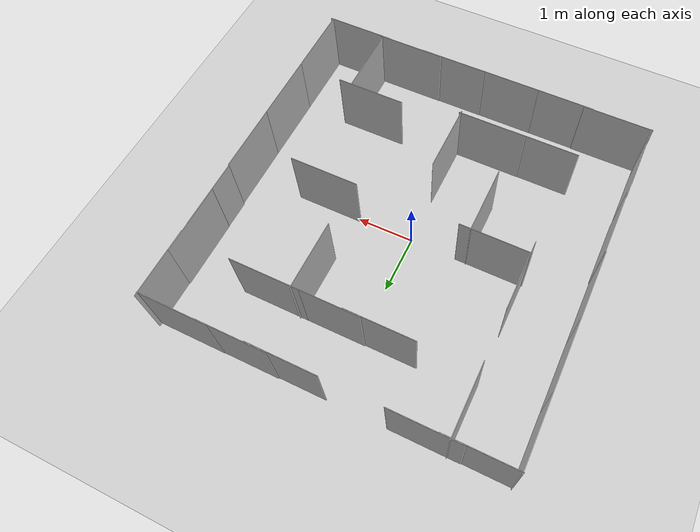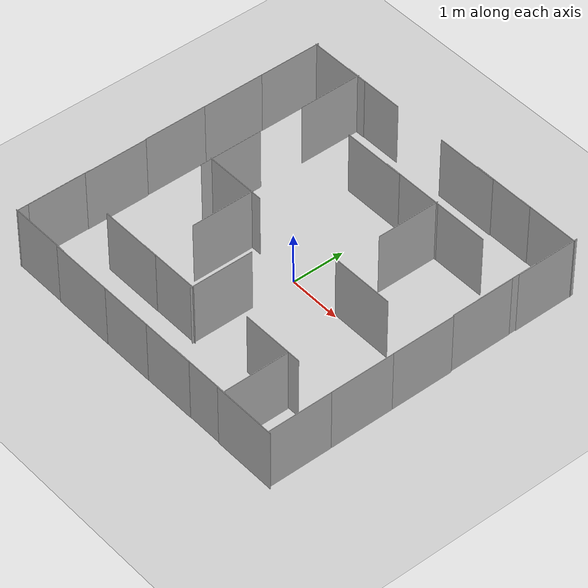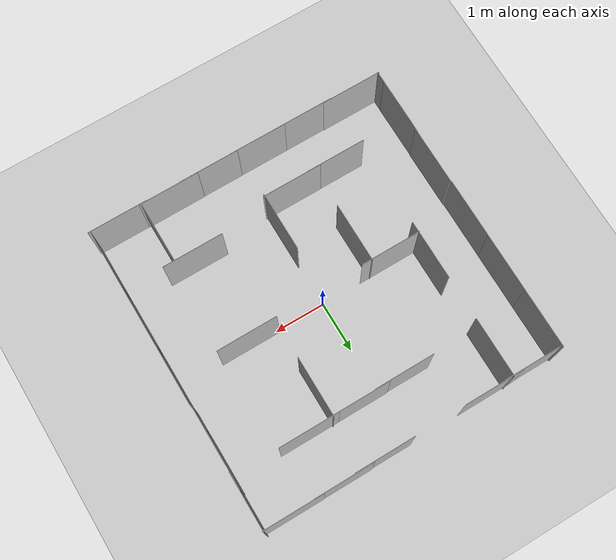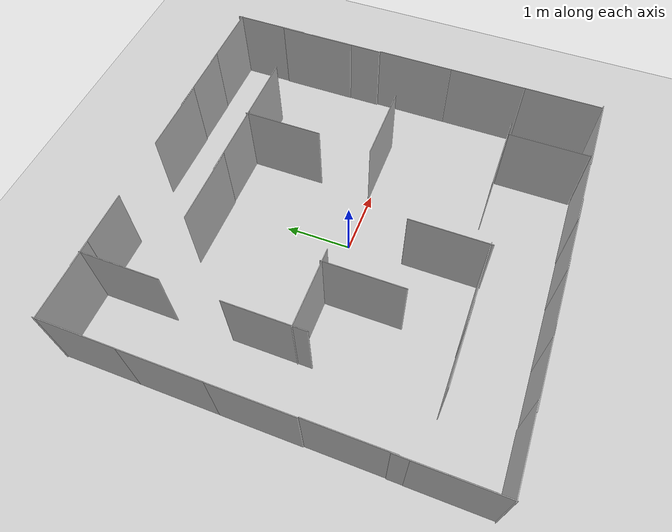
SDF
<sdf version="1.7">
 <world name="default">
  <light name="sun" type="directional">
   <pose>0 0 10 0 -0 0</pose>
   <diffuse>0.8 0.8 0.8 1</diffuse>
   <specular>0.2 0.2 0.2 1</specular>
   <attenuation>
    <range>1000</range>
    <constant>0.9</constant>
    <linear>0.01</linear>
    <quadratic>0.001</quadratic>
   </attenuation>
   <direction>-0.5 0.1 -0.9</direction>
   <spot><inner_angle>0</inner_angle><outer_angle>0</outer_angle><falloff>0</falloff></spot>
  </light>
  <model name="ground_plane">
   <static>1</static>
   <link name="link">
    <collision name="collision">
     <geometry><plane><normal>0 0 1</normal><size>100 100</size></plane></geometry>
     <surface><friction><ode><mu>100</mu><mu2>50</mu2></ode></friction></surface>
    </collision>
    <visual name="visual">
     <cast_shadows>0</cast_shadows>
     <geometry><plane><normal>0 0 1</normal><size>100 100</size></plane></geometry>
     <material>
      <script><uri>file://media/materials/scripts/gazebo.material</uri><name>Gazebo/Grey</name></script>
     </material>
    </visual>
   </link>
  </model>
  <gravity>0 0 -9.8</gravity>
  <magnetic_field>6e-06 2.3e-05 -4.2e-05</magnetic_field>
  <atmosphere type="adiabatic"/>
  <physics type="ode">
   <max_step_size>0.001</max_step_size>
   <real_time_factor>1</real_time_factor>
   <real_time_update_rate>1000</real_time_update_rate>
  </physics>
  <scene><ambient>0.4 0.4 0.4 1</ambient><background>0.7 0.7 0.7 1</background><shadows>1</shadows></scene>
  <spherical_coordinates>
   <surface_model>EARTH_WGS84</surface_model>
   <latitude_deg>0</latitude_deg>
   <longitude_deg>0</longitude_deg>
   <elevation>0</elevation>
   <heading_deg>0</heading_deg>
  </spherical_coordinates>
  <model name="nist_maze_wall_120_0">
   <static>1</static>
   <link name="nist_maze_wall_120_link">
    <collision name="collision">
     <geometry>
      <mesh><uri>model://nist_maze_wall_120/meshes/nist_maze_wall_120.dae</uri><scale>1 1 1</scale></mesh>
     </geometry>
    </collision>
    <visual name="visual">
     <geometry>
      <mesh><uri>model://nist_maze_wall_120/meshes/nist_maze_wall_120.dae</uri><scale>1 1 1</scale></mesh>
     </geometry>
    </visual>
   </link>
   <pose>0.584761 -3.60087 0 0 -0 0</pose>
  </model>
  <model name="nist_maze_wall_120_1">
   <static>1</static>
   <link name="nist_maze_wall_120_link">
    <collision name="collision">
     <geometry>
      <mesh><uri>model://nist_maze_wall_120/meshes/nist_maze_wall_120.dae</uri><scale>1 1 1</scale></mesh>
     </geometry>
    </collision>
    <visual name="visual">
     <geometry>
      <mesh><uri>model://nist_maze_wall_120/meshes/nist_maze_wall_120.dae</uri><scale>1 1 1</scale></mesh>
     </geometry>
    </visual>
   </link>
   <pose>-0.411258 -3.60378 0 0 -0 0</pose>
  </model>
  <model name="nist_maze_wall_120_2">
   <static>1</static>
   <link name="nist_maze_wall_120_link">
    <collision name="collision">
     <geometry>
      <mesh><uri>model://nist_maze_wall_120/meshes/nist_maze_wall_120.dae</uri><scale>1 1 1</scale></mesh>
     </geometry>
    </collision>
    <visual name="visual">
     <geometry>
      <mesh><uri>model://nist_maze_wall_120/meshes/nist_maze_wall_120.dae</uri><scale>1 1 1</scale></mesh>
     </geometry>
    </visual>
   </link>
   <pose>-1.3947 -3.60464 0 0 -0 0</pose>
  </model>
  <model name="nist_maze_wall_120_3">
   <static>1</static>
   <link name="nist_maze_wall_120_link">
    <collision name="collision">
     <geometry>
      <mesh><uri>model://nist_maze_wall_120/meshes/nist_maze_wall_120.dae</uri><scale>1 1 1</scale></mesh>
     </geometry>
    </collision>
    <visual name="visual">
     <geometry>
      <mesh><uri>model://nist_maze_wall_120/meshes/nist_maze_wall_120.dae</uri><scale>1 1 1</scale></mesh>
     </geometry>
    </visual>
   </link>
   <pose>-2.42383 -3.59526 0 0 -0 0</pose>
  </model>
  <model name="nist_maze_wall_120_4">
   <static>1</static>
   <link name="nist_maze_wall_120_link">
    <collision name="collision">
     <geometry>
      <mesh><uri>model://nist_maze_wall_120/meshes/nist_maze_wall_120.dae</uri><scale>1 1 1</scale></mesh>
     </geometry>
    </collision>
    <visual name="visual">
     <geometry>
      <mesh><uri>model://nist_maze_wall_120/meshes/nist_maze_wall_120.dae</uri><scale>1 1 1</scale></mesh>
     </geometry>
    </visual>
   </link>
   <pose>1.41416 -3.59437 0 0 -0 0</pose>
  </model>
  <model name="nist_maze_wall_120_5">
   <static>1</static>
   <link name="nist_maze_wall_120_link">
    <collision name="collision">
     <geometry>
      <mesh><uri>model://nist_maze_wall_120/meshes/nist_maze_wall_120.dae</uri><scale>1 1 1</scale></mesh>
     </geometry>
    </collision>
    <visual name="visual">
     <geometry>
      <mesh><uri>model://nist_maze_wall_120/meshes/nist_maze_wall_120.dae</uri><scale>1 1 1</scale></mesh>
     </geometry>
    </visual>
   </link>
   <pose>2.44095 -3.60282 0 0 -0 0</pose>
  </model>
  <model name="nist_maze_wall_120_6">
   <static>1</static>
   <link name="nist_maze_wall_120_link">
    <collision name="collision">
     <geometry>
      <mesh><uri>model://nist_maze_wall_120/meshes/nist_maze_wall_120.dae</uri><scale>1 1 1</scale></mesh>
     </geometry>
    </collision>
    <visual name="visual">
     <geometry>
      <mesh><uri>model://nist_maze_wall_120/meshes/nist_maze_wall_120.dae</uri><scale>1 1 1</scale></mesh>
     </geometry>
    </visual>
   </link>
   <pose>1.41345 2.43223 0 0 -0 0</pose>
  </model>
  <model name="nist_maze_wall_120_7">
   <static>1</static>
   <link name="nist_maze_wall_120_link">
    <collision name="collision">
     <geometry>
      <mesh><uri>model://nist_maze_wall_120/meshes/nist_maze_wall_120.dae</uri><scale>1 1 1</scale></mesh>
     </geometry>
    </collision>
    <visual name="visual">
     <geometry>
      <mesh><uri>model://nist_maze_wall_120/meshes/nist_maze_wall_120.dae</uri><scale>1 1 1</scale></mesh>
     </geometry>
    </visual>
   </link>
   <pose>2.40074 2.438 0 0 -0 0</pose>
  </model>
  <model name="nist_maze_wall_120_8">
   <static>1</static>
   <link name="nist_maze_wall_120_link">
    <collision name="collision">
     <geometry>
      <mesh><uri>model://nist_maze_wall_120/meshes/nist_maze_wall_120.dae</uri><scale>1 1 1</scale></mesh>
     </geometry>
    </collision>
    <visual name="visual">
     <geometry>
      <mesh><uri>model://nist_maze_wall_120/meshes/nist_maze_wall_120.dae</uri><scale>1 1 1</scale></mesh>
     </geometry>
    </visual>
   </link>
   <pose>-1.60274 2.41331 0 0 -0 0</pose>
  </model>
  <model name="nist_maze_wall_120_9">
   <static>1</static>
   <link name="nist_maze_wall_120_link">
    <collision name="collision">
     <geometry>
      <mesh><uri>model://nist_maze_wall_120/meshes/nist_maze_wall_120.dae</uri><scale>1 1 1</scale></mesh>
     </geometry>
    </collision>
    <visual name="visual">
     <geometry>
      <mesh><uri>model://nist_maze_wall_120/meshes/nist_maze_wall_120.dae</uri><scale>1 1 1</scale></mesh>
     </geometry>
    </visual>
   </link>
   <pose>-2.40164 2.40537 0 0 -0 0</pose>
  </model>
  <model name="nist_maze_wall_120">
   <static>1</static>
   <link name="nist_maze_wall_120_link">
    <collision name="collision">
     <geometry>
      <mesh><uri>model://nist_maze_wall_120/meshes/nist_maze_wall_120.dae</uri><scale>1 1 1</scale></mesh>
     </geometry>
    </collision>
    <visual name="visual">
     <geometry>
      <mesh><uri>model://nist_maze_wall_120/meshes/nist_maze_wall_120.dae</uri><scale>1 1 1</scale></mesh>
     </geometry>
    </visual>
   </link>
   <pose>0.597324 2.41924 0 0 -0 0</pose>
  </model>
  <model name="nist_maze_wall_120_10_clone">
   <static>1</static>
   <link name="nist_maze_wall_120_link">
    <collision name="collision">
     <geometry>
      <mesh><uri>model://nist_maze_wall_120/meshes/nist_maze_wall_120.dae</uri><scale>1 1 1</scale></mesh>
     </geometry>
    </collision>
    <visual name="visual">
     <geometry>
      <mesh><uri>model://nist_maze_wall_120/meshes/nist_maze_wall_120.dae</uri><scale>1 1 1</scale></mesh>
     </geometry>
    </visual>
   </link>
   <pose>3.59015 -2.40597 0 0 -0 1.57</pose>
  </model>
  <model name="nist_maze_wall_120_10_clone_0">
   <static>1</static>
   <link name="nist_maze_wall_120_link">
    <collision name="collision">
     <geometry>
      <mesh><uri>model://nist_maze_wall_120/meshes/nist_maze_wall_120.dae</uri><scale>1 1 1</scale></mesh>
     </geometry>
    </collision>
    <visual name="visual">
     <geometry>
      <mesh><uri>model://nist_maze_wall_120/meshes/nist_maze_wall_120.dae</uri><scale>1 1 1</scale></mesh>
     </geometry>
    </visual>
   </link>
   <pose>3.58983 -1.20718 0 0 -0 1.57</pose>
  </model>
  <model name="nist_maze_wall_120_10_clone_1">
   <static>1</static>
   <link name="nist_maze_wall_120_link">
    <collision name="collision">
     <geometry>
      <mesh><uri>model://nist_maze_wall_120/meshes/nist_maze_wall_120.dae</uri><scale>1 1 1</scale></mesh>
     </geometry>
    </collision>
    <visual name="visual">
     <geometry>
      <mesh><uri>model://nist_maze_wall_120/meshes/nist_maze_wall_120.dae</uri><scale>1 1 1</scale></mesh>
     </geometry>
    </visual>
   </link>
   <pose>3.58922 -0.023456 0 0 -0 1.57</pose>
  </model>
  <model name="nist_maze_wall_120_10_clone_2">
   <static>1</static>
   <link name="nist_maze_wall_120_link">
    <collision name="collision">
     <geometry>
      <mesh><uri>model://nist_maze_wall_120/meshes/nist_maze_wall_120.dae</uri><scale>1 1 1</scale></mesh>
     </geometry>
    </collision>
    <visual name="visual">
     <geometry>
      <mesh><uri>model://nist_maze_wall_120/meshes/nist_maze_wall_120.dae</uri><scale>1 1 1</scale></mesh>
     </geometry>
    </visual>
   </link>
   <pose>3.57323 1.17469 0 0 -0 1.57</pose>
  </model>
  <model name="nist_maze_wall_120_10_clone_2_clone">
   <static>1</static>
   <link name="nist_maze_wall_120_link">
    <collision name="collision">
     <geometry>
      <mesh><uri>model://nist_maze_wall_120/meshes/nist_maze_wall_120.dae</uri><scale>1 1 1</scale></mesh>
     </geometry>
    </collision>
    <visual name="visual">
     <geometry>
      <mesh><uri>model://nist_maze_wall_120/meshes/nist_maze_wall_120.dae</uri><scale>1 1 1</scale></mesh>
     </geometry>
    </visual>
   </link>
   <pose>-2.38474 2.44716 0 0 -0 1.57</pose>
  </model>
  <model name="nist_maze_wall_120_10_clone_2_clone_0">
   <static>1</static>
   <link name="nist_maze_wall_120_link">
    <collision name="collision">
     <geometry>
      <mesh><uri>model://nist_maze_wall_120/meshes/nist_maze_wall_120.dae</uri><scale>1 1 1</scale></mesh>
     </geometry>
    </collision>
    <visual name="visual">
     <geometry>
      <mesh><uri>model://nist_maze_wall_120/meshes/nist_maze_wall_120.dae</uri><scale>1 1 1</scale></mesh>
     </geometry>
    </visual>
   </link>
   <pose>-2.38714 1.27522 0 0 -0 1.57</pose>
  </model>
  <model name="nist_maze_wall_120_10_clone_2_clone_1">
   <static>1</static>
   <link name="nist_maze_wall_120_link">
    <collision name="collision">
     <geometry>
      <mesh><uri>model://nist_maze_wall_120/meshes/nist_maze_wall_120.dae</uri><scale>1 1 1</scale></mesh>
     </geometry>
    </collision>
    <visual name="visual">
     <geometry>
      <mesh><uri>model://nist_maze_wall_120/meshes/nist_maze_wall_120.dae</uri><scale>1 1 1</scale></mesh>
     </geometry>
    </visual>
   </link>
   <pose>-2.38974 0.094289 0 0 -0 1.57</pose>
  </model>
  <model name="nist_maze_wall_120_10_clone_2_clone_2">
   <static>1</static>
   <link name="nist_maze_wall_120_link">
    <collision name="collision">
     <geometry>
      <mesh><uri>model://nist_maze_wall_120/meshes/nist_maze_wall_120.dae</uri><scale>1 1 1</scale></mesh>
     </geometry>
    </collision>
    <visual name="visual">
     <geometry>
      <mesh><uri>model://nist_maze_wall_120/meshes/nist_maze_wall_120.dae</uri><scale>1 1 1</scale></mesh>
     </geometry>
    </visual>
   </link>
   <pose>-2.38095 -1.10148 0 0 -0 1.57</pose>
  </model>
  <model name="nist_maze_wall_120_10_clone_2_clone_3">
   <static>1</static>
   <link name="nist_maze_wall_120_link">
    <collision name="collision">
     <geometry>
      <mesh><uri>model://nist_maze_wall_120/meshes/nist_maze_wall_120.dae</uri><scale>1 1 1</scale></mesh>
     </geometry>
    </collision>
    <visual name="visual">
     <geometry>
      <mesh><uri>model://nist_maze_wall_120/meshes/nist_maze_wall_120.dae</uri><scale>1 1 1</scale></mesh>
     </geometry>
    </visual>
   </link>
   <pose>-2.38957 -2.19774 0 0 -0 1.57</pose>
  </model>
  <model name="nist_maze_wall_120_10_clone_2_clone_4">
   <static>1</static>
   <link name="nist_maze_wall_120_link">
    <collision name="collision">
     <geometry>
      <mesh><uri>model://nist_maze_wall_120/meshes/nist_maze_wall_120.dae</uri><scale>1 1 1</scale></mesh>
     </geometry>
    </collision>
    <visual name="visual">
     <geometry>
      <mesh><uri>model://nist_maze_wall_120/meshes/nist_maze_wall_120.dae</uri><scale>1 1 1</scale></mesh>
     </geometry>
    </visual>
   </link>
   <pose>-2.39253 -2.41551 0 0 -0 1.57</pose>
  </model>
  <model name="nist_maze_wall_120_10_clone_2_clone_5">
   <static>1</static>
   <link name="nist_maze_wall_120_link">
    <collision name="collision">
     <geometry>
      <mesh><uri>model://nist_maze_wall_120/meshes/nist_maze_wall_120.dae</uri><scale>1 1 1</scale></mesh>
     </geometry>
    </collision>
    <visual name="visual">
     <geometry>
      <mesh><uri>model://nist_maze_wall_120/meshes/nist_maze_wall_120.dae</uri><scale>1 1 1</scale></mesh>
     </geometry>
    </visual>
   </link>
   <pose>3.56868 1.67028 0 0 -0 1.57</pose>
  </model>
  <model name="nist_maze_wall_120_10_clone_2_clone_6">
   <static>1</static>
   <link name="nist_maze_wall_120_link">
    <collision name="collision">
     <geometry>
      <mesh><uri>model://nist_maze_wall_120/meshes/nist_maze_wall_120.dae</uri><scale>1 1 1</scale></mesh>
     </geometry>
    </collision>
    <visual name="visual">
     <geometry>
      <mesh><uri>model://nist_maze_wall_120/meshes/nist_maze_wall_120.dae</uri><scale>1 1 1</scale></mesh>
     </geometry>
    </visual>
   </link>
   <pose>3.57947 2.50233 0 0 -0 1.57</pose>
  </model>
  <model name="nist_maze_wall_120_10_clone_2_clone_7">
   <static>1</static>
   <link name="nist_maze_wall_120_link">
    <collision name="collision">
     <geometry>
      <mesh><uri>model://nist_maze_wall_120/meshes/nist_maze_wall_120.dae</uri><scale>1 1 1</scale></mesh>
     </geometry>
    </collision>
    <visual name="visual">
     <geometry>
      <mesh><uri>model://nist_maze_wall_120/meshes/nist_maze_wall_120.dae</uri><scale>1 1 1</scale></mesh>
     </geometry>
    </visual>
   </link>
   <pose>1.61008 1.44 0 0 -0 1.57</pose>
  </model>
  <model name="nist_maze_wall_120_10_clone_2_clone_8">
   <static>1</static>
   <link name="nist_maze_wall_120_link">
    <collision name="collision">
     <geometry>
      <mesh><uri>model://nist_maze_wall_120/meshes/nist_maze_wall_120.dae</uri><scale>1 1 1</scale></mesh>
     </geometry>
    </collision>
    <visual name="visual">
     <geometry>
      <mesh><uri>model://nist_maze_wall_120/meshes/nist_maze_wall_120.dae</uri><scale>1 1 1</scale></mesh>
     </geometry>
    </visual>
   </link>
   <pose>-1.37708 2.44036 0 0 -0 1.57</pose>
  </model>
  <model name="nist_maze_wall_120_10_clone_2_clone_9">
   <static>1</static>
   <link name="nist_maze_wall_120_link">
    <collision name="collision">
     <geometry>
      <mesh><uri>model://nist_maze_wall_120/meshes/nist_maze_wall_120.dae</uri><scale>1 1 1</scale></mesh>
     </geometry>
    </collision>
    <visual name="visual">
     <geometry>
      <mesh><uri>model://nist_maze_wall_120/meshes/nist_maze_wall_120.dae</uri><scale>1 1 1</scale></mesh>
     </geometry>
    </visual>
   </link>
   <pose>-1.37687 0.387379 0 0 -0 1.57</pose>
  </model>
  <model name="nist_maze_wall_120_10_clone_2_clone_10">
   <static>1</static>
   <link name="nist_maze_wall_120_link">
    <collision name="collision">
     <geometry>
      <mesh><uri>model://nist_maze_wall_120/meshes/nist_maze_wall_120.dae</uri><scale>1 1 1</scale></mesh>
     </geometry>
    </collision>
    <visual name="visual">
     <geometry>
      <mesh><uri>model://nist_maze_wall_120/meshes/nist_maze_wall_120.dae</uri><scale>1 1 1</scale></mesh>
     </geometry>
    </visual>
   </link>
   <pose>0.614013 -1.4324 0 0 -0 1.57</pose>
  </model>
  <model name="nist_maze_wall_120_10_clone_2_clone_11">
   <static>1</static>
   <link name="nist_maze_wall_120_link">
    <collision name="collision">
     <geometry>
      <mesh><uri>model://nist_maze_wall_120/meshes/nist_maze_wall_120.dae</uri><scale>1 1 1</scale></mesh>
     </geometry>
    </collision>
    <visual name="visual">
     <geometry>
      <mesh><uri>model://nist_maze_wall_120/meshes/nist_maze_wall_120.dae</uri><scale>1 1 1</scale></mesh>
     </geometry>
    </visual>
   </link>
   <pose>2.57599 -2.37897 0 0 -0 1.57</pose>
  </model>
  <model name="nist_maze_wall_120_10">
   <static>1</static>
   <link name="nist_maze_wall_120_link">
    <collision name="collision">
     <geometry>
      <mesh><uri>model://nist_maze_wall_120/meshes/nist_maze_wall_120.dae</uri><scale>1 1 1</scale></mesh>
     </geometry>
    </collision>
    <visual name="visual">
     <geometry>
      <mesh><uri>model://nist_maze_wall_120/meshes/nist_maze_wall_120.dae</uri><scale>1 1 1</scale></mesh>
     </geometry>
    </visual>
   </link>
   <pose>0.459533 1.4051 0 0 -0 0</pose>
  </model>
  <model name="nist_maze_wall_120_11">
   <static>1</static>
   <link name="nist_maze_wall_120_link">
    <collision name="collision">
     <geometry>
      <mesh><uri>model://nist_maze_wall_120/meshes/nist_maze_wall_120.dae</uri><scale>1 1 1</scale></mesh>
     </geometry>
    </collision>
    <visual name="visual">
     <geometry>
      <mesh><uri>model://nist_maze_wall_120/meshes/nist_maze_wall_120.dae</uri><scale>1 1 1</scale></mesh>
     </geometry>
    </visual>
   </link>
   <pose>-0.421563 1.394 0 0 -0 0</pose>
  </model>
  <model name="nist_maze_wall_120_12">
   <static>1</static>
   <link name="nist_maze_wall_120_link">
    <collision name="collision">
     <geometry>
      <mesh><uri>model://nist_maze_wall_120/meshes/nist_maze_wall_120.dae</uri><scale>1 1 1</scale></mesh>
     </geometry>
    </collision>
    <visual name="visual">
     <geometry>
      <mesh><uri>model://nist_maze_wall_120/meshes/nist_maze_wall_120.dae</uri><scale>1 1 1</scale></mesh>
     </geometry>
    </visual>
   </link>
   <pose>-1.4017 -0.597274 0 0 -0 0</pose>
  </model>
  <model name="nist_maze_wall_120_13">
   <static>1</static>
   <link name="nist_maze_wall_120_link">
    <collision name="collision">
     <geometry>
      <mesh><uri>model://nist_maze_wall_120/meshes/nist_maze_wall_120.dae</uri><scale>1 1 1</scale></mesh>
     </geometry>
    </collision>
    <visual name="visual">
     <geometry>
      <mesh><uri>model://nist_maze_wall_120/meshes/nist_maze_wall_120.dae</uri><scale>1 1 1</scale></mesh>
     </geometry>
    </visual>
   </link>
   <pose>1.54315 -0.570108 0 0 -0 0</pose>
  </model>
  <model name="nist_maze_wall_120_14">
   <static>1</static>
   <link name="nist_maze_wall_120_link">
    <collision name="collision">
     <geometry>
      <mesh><uri>model://nist_maze_wall_120/meshes/nist_maze_wall_120.dae</uri><scale>1 1 1</scale></mesh>
     </geometry>
    </collision>
    <visual name="visual">
     <geometry>
      <mesh><uri>model://nist_maze_wall_120/meshes/nist_maze_wall_120.dae</uri><scale>1 1 1</scale></mesh>
     </geometry>
    </visual>
   </link>
   <pose>1.47729 1.40638 0 0 -0 0</pose>
  </model>
  <model name="nist_maze_wall_120_15">
   <static>1</static>
   <link name="nist_maze_wall_120_link">
    <collision name="collision">
     <geometry>
      <mesh><uri>model://nist_maze_wall_120/meshes/nist_maze_wall_120.dae</uri><scale>1 1 1</scale></mesh>
     </geometry>
    </collision>
    <visual name="visual">
     <geometry>
      <mesh><uri>model://nist_maze_wall_120/meshes/nist_maze_wall_120.dae</uri><scale>1 1 1</scale></mesh>
     </geometry>
    </visual>
   </link>
   <pose>-0.555283 -2.58905 0 0 -0 0</pose>
  </model>
  <model name="nist_maze_wall_120_16">
   <static>1</static>
   <link name="nist_maze_wall_120_link">
    <collision name="collision">
     <geometry>
      <mesh><uri>model://nist_maze_wall_120/meshes/nist_maze_wall_120.dae</uri><scale>1 1 1</scale></mesh>
     </geometry>
    </collision>
    <visual name="visual">
     <geometry>
      <mesh><uri>model://nist_maze_wall_120/meshes/nist_maze_wall_120.dae</uri><scale>1 1 1</scale></mesh>
     </geometry>
    </visual>
   </link>
   <pose>-1.46702 -2.59318 0 0 -0 0</pose>
  </model>
  <model name="nist_maze_wall_120_10_clone_2_clone_12">
   <static>1</static>
   <link name="nist_maze_wall_120_link">
    <collision name="collision">
     <geometry>
      <mesh><uri>model://nist_maze_wall_120/meshes/nist_maze_wall_120.dae</uri><scale>1 1 1</scale></mesh>
     </geometry>
    </collision>
    <visual name="visual">
     <geometry>
      <mesh><uri>model://nist_maze_wall_120/meshes/nist_maze_wall_120.dae</uri><scale>1 1 1</scale></mesh>
     </geometry>
    </visual>
   </link>
   <pose>-0.402197 -0.567847 0 0 -0 1.57</pose>
  </model>
  <model name="nist_maze_wall_120_17">
   <static>1</static>
   <link name="nist_maze_wall_120_link">
    <collision name="collision">
     <geometry>
      <mesh><uri>model://nist_maze_wall_120/meshes/nist_maze_wall_120.dae</uri><scale>1 1 1</scale></mesh>
     </geometry>
    </collision>
    <visual name="visual">
     <geometry>
      <mesh><uri>model://nist_maze_wall_120/meshes/nist_maze_wall_120.dae</uri><scale>1 1 1</scale></mesh>
     </geometry>
    </visual>
   </link>
   <pose>1.60908 -2.36608 0 0 -0 0</pose>
  </model>
  <light name="user_point_light_0" type="point">
   <pose>0.005568 0.012382 1 0 -0 0</pose>
   <diffuse>0.5 0.5 0.5 1</diffuse>
   <specular>0.1 0.1 0.1 1</specular>
   <attenuation>
    <range>20</range>
    <constant>0.5</constant>
    <linear>0.01</linear>
    <quadratic>0.001</quadratic>
   </attenuation>
   <cast_shadows>0</cast_shadows>
   <direction>0 0 -1</direction>
  </light>
  <light name="user_point_light_1" type="point">
   <pose>2.66643 1.94784 1 0 -0 0</pose>
   <diffuse>0.5 0.5 0.5 1</diffuse>
   <specular>0.1 0.1 0.1 1</specular>
   <attenuation>
    <range>20</range>
    <constant>0.5</constant>
    <linear>0.01</linear>
    <quadratic>0.001</quadratic>
   </attenuation>
   <cast_shadows>0</cast_shadows>
   <direction>0 0 -1</direction>
  </light>
  <light name="user_point_light_2" type="point">
   <pose>1.96583 -2.40781 1 0 -0 0</pose>
   <diffuse>0.5 0.5 0.5 1</diffuse>
   <specular>0.1 0.1 0.1 1</specular>
   <attenuation>
    <range>20</range>
    <constant>0.5</constant>
    <linear>0.01</linear>
    <quadratic>0.001</quadratic>
   </attenuation>
   <cast_shadows>0</cast_shadows>
   <direction>0 0 -1</direction>
  </light>
  <light name="user_point_light_3" type="point">
   <pose>-1.51268 -1.99772 1 0 -0 0</pose>
   <diffuse>0.5 0.5 0.5 1</diffuse>
   <specular>0.1 0.1 0.1 1</specular>
   <attenuation>
    <range>20</range>
    <constant>0.5</constant>
    <linear>0.01</linear>
    <quadratic>0.001</quadratic>
   </attenuation>
   <cast_shadows>0</cast_shadows>
   <direction>0 0 -1</direction>
  </light>
  <light name="user_point_light_4" type="point">
   <pose>-1.93089 1.9576 1 0 -0 0</pose>
   <diffuse>0.5 0.5 0.5 1</diffuse>
   <specular>0.1 0.1 0.1 1</specular>
   <attenuation>
    <range>20</range>
    <constant>0.5</constant>
    <linear>0.01</linear>
    <quadratic>0.001</quadratic>
   </attenuation>
   <cast_shadows>0</cast_shadows>
   <direction>0 0 -1</direction>
  </light>
 </world>
</sdf>
